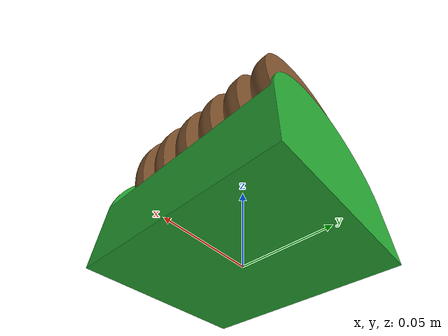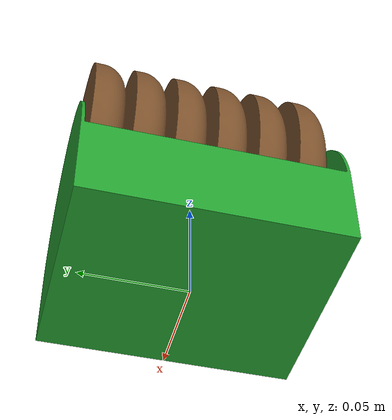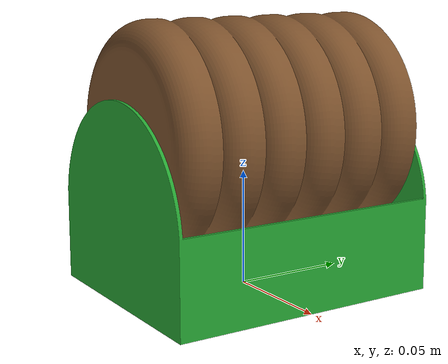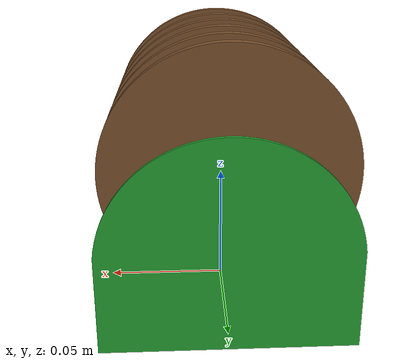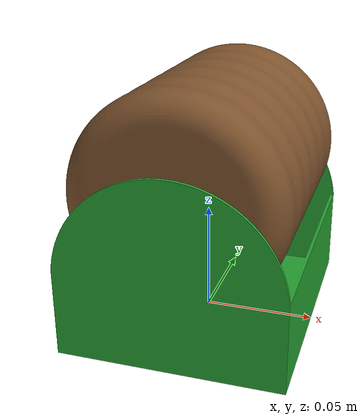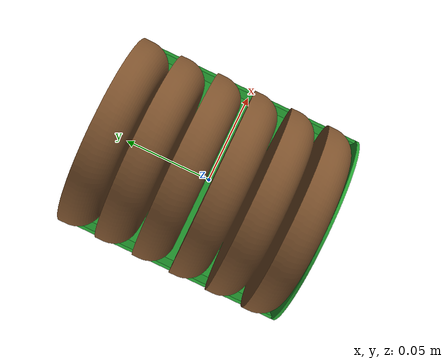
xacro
<?xml version="1.0" encoding="utf-8"?>
<robot xmlns:xacro="http://www.ros.org/wiki/xacro" name="Lebkuchen_assembly">

  <link name="package_link">
    <inertial>
      <origin xyz="0 0 0.05" rpy="0 0 1.57" />
      <mass value="0.5" />
      <inertia ixx="0.0012" ixy="0" ixz="0" iyy="0.0015" iyz="0" izz="0.0018" />
    </inertial>
    <visual>
      <origin xyz="0 0 0" rpy="0 0 1.57" />
      <geometry>
        <mesh filename="package://ur10e_sim/meshes/Lebkuchen.stl" scale="0.001 0.001 0.001" />
      </geometry>
      <material name="forest_green"/>
    </visual>
    <collision>
      <origin xyz="0 0 0" rpy="0 0 1.57" />
      <geometry>
        <mesh filename="package://ur10e_sim/meshes/Lebkuchen.stl" scale="0.001 0.001 0.001" />
      </geometry>
    </collision>
  </link>

  <link name="kuchen_link">
    <inertial>
      <origin xyz="0 0 0" rpy="0 0 0" />
      <mass value="0.001" />
      <inertia ixx="0.000001" ixy="0" ixz="0"  iyy="0.000001" iyz="0" izz="0.000001" />
    </inertial>
    <visual>
      <origin xyz="0 0 0" rpy="0 0 0" />
      <geometry>
        <mesh filename="package://ur10e_sim/meshes/kuchen.stl" scale="0.001 0.001 0.001" />
      </geometry>
      <material name="chocolate_brown"/>
    </visual>
    <collision>
      <origin xyz="0 0 0" rpy="0 0 0" />
      <geometry>
        <mesh filename="package://ur10e_sim/meshes/kuchen.stl" scale="0.001 0.001 0.001" />
      </geometry>
    </collision>
  </link>

  <joint name="tray_to_kuchen_joint" type="fixed">
    <parent link="package_link"/>
    <child link="kuchen_link"/>
    <origin xyz="0.0 0.0 0.02" rpy="0 0 1.57"/>
  </joint>

<gazebo reference="package_link">
    <visual>
      <material>
        <ambient>0.0 0.6 0.0 1</ambient>
        <diffuse>0.0 0.8 0.0 1</diffuse>
        <specular>0.3 0.3 0.3 1</specular>
        <emissive>0.0 0.0 0.0 0</emissive>
      </material>
    </visual>
    <collision>
      <surface>
        <contact>
          <ode>
            <kp>10000.0</kp>  <kd>100.0</kd>     <min_depth>0.005</min_depth>
            <max_vel>0.1</max_vel>
          </ode>
        </contact>
        <friction>
          <ode>
            <mu>1</mu>
            <mu2>1</mu2>
          </ode>
        </friction>
      </surface>
    </collision>
  </gazebo>

  <gazebo reference="kuchen_link">
    <material>Gazebo/Wood</material> <visual>
      <material>
        <ambient>0.5 0.3 0.15 1</ambient>
        <diffuse>0.5 0.3 0.15 1</diffuse>
        <specular>0.1 0.1 0.1 1</specular>
        <emissive>0 0 0 0</emissive>
      </material>
    </visual>
  </gazebo>

  <gazebo reference="package_link">
  <self_collide>false</self_collide>
  </gazebo>

  <gazebo reference="kuchen_link">
  <self_collide>false</self_collide>
  </gazebo>

</robot>
